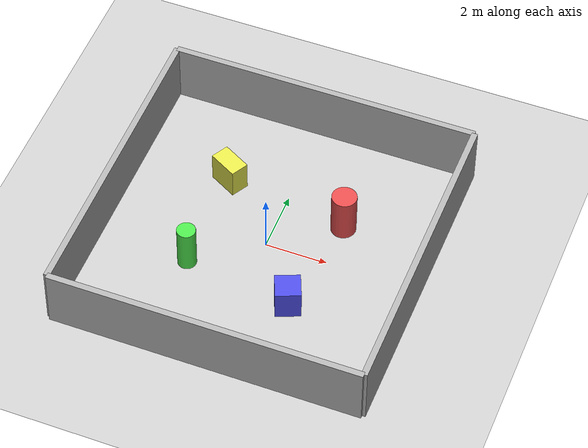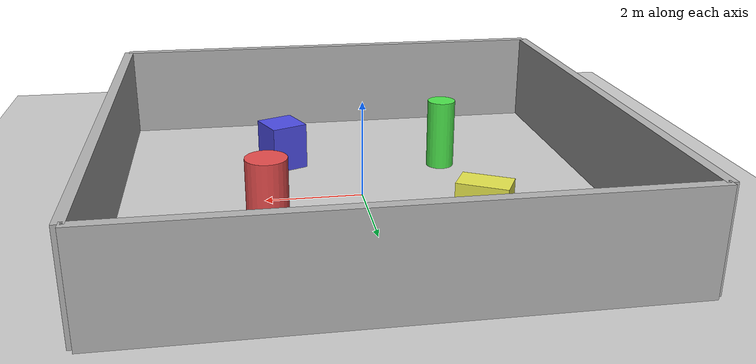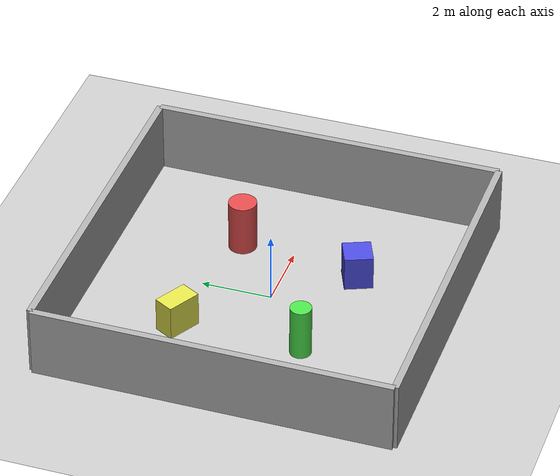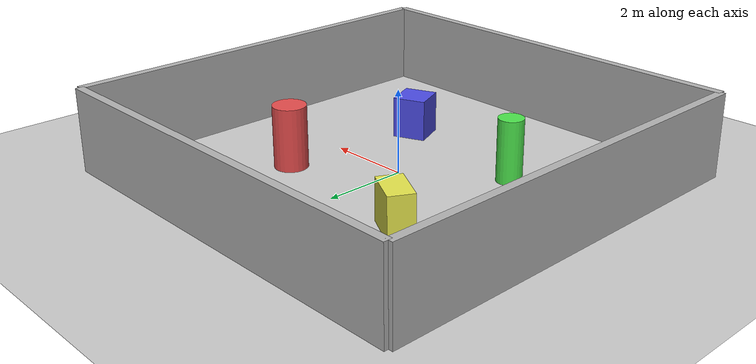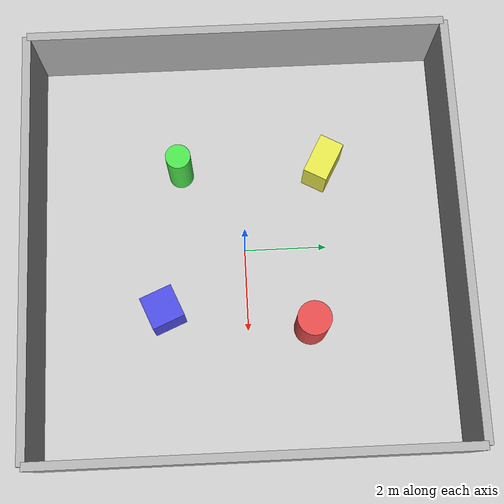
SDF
<?xml version="1.0" ?>
<sdf version="1.8">
  <world name="obstacles_world">
    <physics name="1ms" type="ignored">
      <max_step_size>0.001</max_step_size>
      <real_time_factor>1.0</real_time_factor>
    </physics>

    <!-- Core Simulation Plugins -->
    <plugin
      filename="ignition-gazebo-physics-system"
      name="ignition::gazebo::systems::Physics">
    </plugin>
    <plugin
      filename="ignition-gazebo-user-commands-system"
      name="ignition::gazebo::systems::UserCommands">
    </plugin>
    <plugin
      filename="ignition-gazebo-scene-broadcaster-system"
      name="ignition::gazebo::systems::SceneBroadcaster">
    </plugin>
    <plugin
      filename="ignition-gazebo-sensors-system"
      name="ignition::gazebo::systems::Sensors">
      <render_engine>ogre2</render_engine>
    </plugin>

    <!-- Sun / Lighting -->
    <light type="directional" name="sun">
      <cast_shadows>true</cast_shadows>
      <pose>0 0 10 0 0 0</pose>
      <diffuse>0.8 0.8 0.8 1</diffuse>
      <specular>0.2 0.2 0.2 1</specular>
      <attenuation>
        <range>1000</range>
        <constant>0.9</constant>
        <linear>0.01</linear>
        <quadratic>0.001</quadratic>
      </attenuation>
      <direction>-0.5 0.1 -0.9</direction>
    </light>

    <!-- Ground Plane -->
    <model name="ground_plane">
      <static>true</static>
      <link name="link">
        <collision name="collision">
          <geometry>
            <plane>
              <normal>0 0 1</normal>
              <size>100 100</size>
            </plane>
          </geometry>
        </collision>
        <visual name="visual">
          <geometry>
            <plane>
              <normal>0 0 1</normal>
              <size>100 100</size>
            </plane>
          </geometry>
          <material>
            <ambient>0.8 0.8 0.8 1</ambient>
            <diffuse>0.8 0.8 0.8 1</diffuse>
            <specular>0.8 0.8 0.8 1</specular>
          </material>
        </visual>
      </link>
    </model>

    <!-- Arena North Wall -->
    <model name="wall_north">
      <static>true</static>
      <pose>0 5 1 0 0 0</pose>
      <link name="link">
        <collision name="collision"><geometry><box><size>10 0.2 2</size></box></geometry></collision>
        <visual name="visual"><geometry><box><size>10 0.2 2</size></box></geometry>
          <material><ambient>0.5 0.5 0.5 1</ambient><diffuse>0.7 0.7 0.7 1</diffuse></material>
        </visual>
      </link>
    </model>

    <!-- Arena South Wall -->
    <model name="wall_south">
      <static>true</static>
      <pose>0 -5 1 0 0 0</pose>
      <link name="link">
        <collision name="collision"><geometry><box><size>10 0.2 2</size></box></geometry></collision>
        <visual name="visual"><geometry><box><size>10 0.2 2</size></box></geometry>
          <material><ambient>0.5 0.5 0.5 1</ambient><diffuse>0.7 0.7 0.7 1</diffuse></material>
        </visual>
      </link>
    </model>

    <!-- Arena East Wall -->
    <model name="wall_east">
      <static>true</static>
      <pose>5 0 1 0 0 1.5708</pose>
      <link name="link">
        <collision name="collision"><geometry><box><size>10 0.2 2</size></box></geometry></collision>
        <visual name="visual"><geometry><box><size>10 0.2 2</size></box></geometry>
          <material><ambient>0.5 0.5 0.5 1</ambient><diffuse>0.7 0.7 0.7 1</diffuse></material>
        </visual>
      </link>
    </model>

    <!-- Arena West Wall -->
    <model name="wall_west">
      <static>true</static>
      <pose>-5 0 1 0 0 1.5708</pose>
      <link name="link">
        <collision name="collision"><geometry><box><size>10 0.2 2</size></box></geometry></collision>
        <visual name="visual"><geometry><box><size>10 0.2 2</size></box></geometry>
          <material><ambient>0.5 0.5 0.5 1</ambient><diffuse>0.7 0.7 0.7 1</diffuse></material>
        </visual>
      </link>
    </model>

    <!-- Obstacle Pillar 1 (Cylinder) -->
    <model name="pillar_1">
      <static>true</static>
      <pose>2 1.5 0.75 0 0 0</pose>
      <link name="link">
        <collision name="collision"><geometry><cylinder><radius>0.4</radius><length>1.5</length></cylinder></geometry></collision>
        <visual name="visual"><geometry><cylinder><radius>0.4</radius><length>1.5</length></cylinder></geometry>
          <material><ambient>0.8 0.2 0.2 1</ambient><diffuse>0.9 0.3 0.3 1</diffuse></material>
        </visual>
      </link>
    </model>

    <!-- Obstacle Pillar 2 (Cylinder) -->
    <model name="pillar_2">
      <static>true</static>
      <pose>-2 -1.5 0.75 0 0 0</pose>
      <link name="link">
        <collision name="collision"><geometry><cylinder><radius>0.3</radius><length>1.5</length></cylinder></geometry></collision>
        <visual name="visual"><geometry><cylinder><radius>0.3</radius><length>1.5</length></cylinder></geometry>
          <material><ambient>0.2 0.8 0.2 1</ambient><diffuse>0.3 0.9 0.3 1</diffuse></material>
        </visual>
      </link>
    </model>

    <!-- Obstacle Box 1 -->
    <model name="box_1">
      <static>true</static>
      <pose>1.5 -2 0.5 0 0 0.4</pose>
      <link name="link">
        <collision name="collision"><geometry><box><size>0.8 0.8 1.0</size></box></geometry></collision>
        <visual name="visual"><geometry><box><size>0.8 0.8 1.0</size></box></geometry>
          <material><ambient>0.2 0.2 0.8 1</ambient><diffuse>0.3 0.3 0.9 1</diffuse></material>
        </visual>
      </link>
    </model>

    <!-- Obstacle Box 2 -->
    <model name="box_2">
      <static>true</static>
      <pose>-2 2 0.5 0 0 -0.5</pose>
      <link name="link">
        <collision name="collision"><geometry><box><size>1.0 0.6 1.0</size></box></geometry></collision>
        <visual name="visual"><geometry><box><size>1.0 0.6 1.0</size></box></geometry>
          <material><ambient>0.8 0.8 0.2 1</ambient><diffuse>0.9 0.9 0.3 1</diffuse></material>
        </visual>
      </link>
    </model>

  </world>
</sdf>
